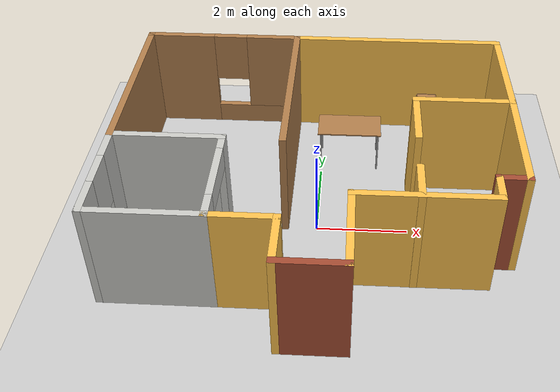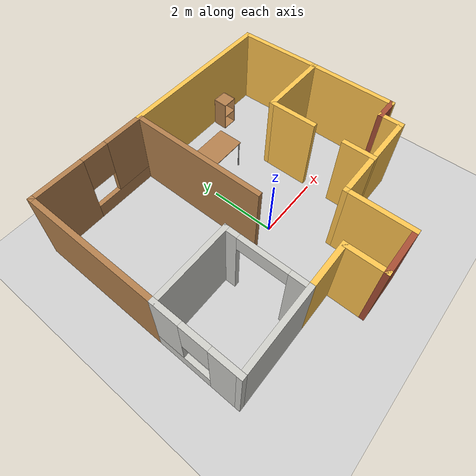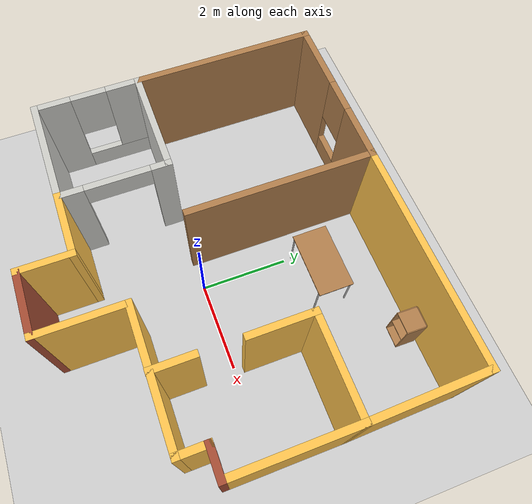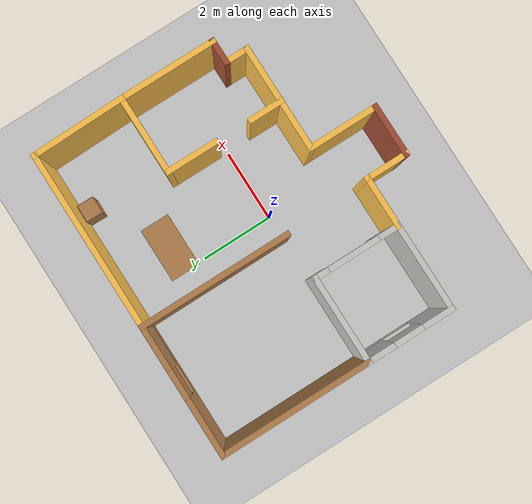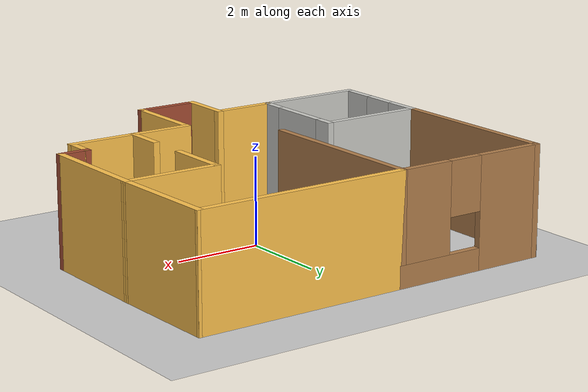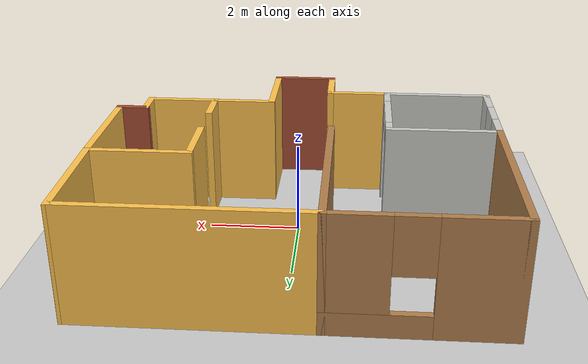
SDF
<sdf version="1.6">
 <world name="default">
  <light name="sun" type="directional">
   <pose>0 0 10 0 -0 0</pose>
   <diffuse>0.8 0.8 0.8 1</diffuse>
   <specular>0.2 0.2 0.2 1</specular>
   <attenuation>
    <range>1000</range>
    <constant>0.9</constant>
    <linear>0.01</linear>
    <quadratic>0.001</quadratic>
   </attenuation>
   <direction>-0.5 0.1 -0.9</direction>
  </light>
  <model name="ground_plane">
   <static>1</static>
   <link name="link">
    <collision name="collision">
     <geometry><plane><normal>0 0 1</normal><size>100 100</size></plane></geometry>
     <surface><friction><ode><mu>100</mu><mu2>50</mu2></ode></friction></surface>
    </collision>
    <visual name="visual">
     <cast_shadows>0</cast_shadows>
     <geometry><plane><normal>0 0 1</normal><size>100 100</size></plane></geometry>
     <material>
      <script><uri>file://media/materials/scripts/gazebo.material</uri><name>Gazebo/Grey</name></script>
     </material>
    </visual>
   </link>
  </model>
  <gravity>0 0 -9.8</gravity>
  <magnetic_field>6e-06 2.3e-05 -4.2e-05</magnetic_field>
  <atmosphere type="adiabatic"/>
  <physics name="default_physics" default="0" type="ode">
   <max_step_size>0.001</max_step_size>
   <real_time_factor>1</real_time_factor>
   <real_time_update_rate>1000</real_time_update_rate>
  </physics>
  <scene><ambient>0.4 0.4 0.4 1</ambient><background>0.7 0.7 0.7 1</background><shadows>1</shadows></scene>
  <audio><device>default</device></audio>
  <spherical_coordinates>
   <surface_model>EARTH_WGS84</surface_model>
   <latitude_deg>0</latitude_deg>
   <longitude_deg>0</longitude_deg>
   <elevation>0</elevation>
   <heading_deg>0</heading_deg>
  </spherical_coordinates>
  <model name="world">
   <pose>-0.057416 0.340258 0 0 -0 0</pose>
   <link name="Wall_0">
    <collision name="Wall_0_Collision">
     <geometry><box><size>2.25 0.15 2.5</size></box></geometry>
     <pose>0 0 1.25 0 -0 0</pose>
    </collision>
    <visual name="Wall_0_Visual">
     <pose>0 0 1.25 0 -0 0</pose>
     <geometry><box><size>2.25 0.15 2.5</size></box></geometry>
     <material>
      <script><uri>file://media/materials/scripts/gazebo.material</uri><name>Gazebo/Grey</name></script>
      <ambient>1 0.764706 0.305882 1</ambient>
     </material>
     <meta><layer>0</layer></meta>
    </visual>
    <pose>3.19926 1.27426 0 0 -0 0</pose>
   </link>
   <link name="Wall_1">
    <collision name="Wall_1_Collision">
     <geometry><box><size>2.75 0.15 2.5</size></box></geometry>
     <pose>0 0 1.25 0 -0 0</pose>
    </collision>
    <visual name="Wall_1_Visual">
     <pose>0 0 1.25 0 -0 0</pose>
     <geometry><box><size>2.75 0.15 2.5</size></box></geometry>
     <material>
      <script><uri>file://media/materials/scripts/gazebo.material</uri><name>Gazebo/Grey</name></script>
      <ambient>1 0.764706 0.305882 1</ambient>
     </material>
     <meta><layer>0</layer></meta>
    </visual>
    <pose>4.24926 -0.025743 0 0 -0 -1.5708</pose>
   </link>
   <link name="Wall_12">
    <pose>-4.25074 -1.50074 0 0 -0 1.5708</pose>
    <visual name="Wall_12_Visual_0">
     <pose>-0.813457 0 1.25 0 -0 0</pose>
     <geometry><box><size>0.873086 0.15 2.5</size></box></geometry>
     <material>
      <script><uri>file://media/materials/scripts/gazebo.material</uri><name>Gazebo/CeilingTiled</name></script>
      <ambient>1 1 1 1</ambient>
     </material>
     <meta><layer>0</layer></meta>
    </visual>
    <collision name="Wall_12_Collision_0">
     <geometry><box><size>0.873086 0.15 2.5</size></box></geometry>
     <pose>-0.813457 0 1.25 0 -0 0</pose>
    </collision>
    <visual name="Wall_12_Visual_1">
     <pose>0.436543 0 0.25 0 -0 0</pose>
     <geometry><box><size>1.62691 0.15 0.5</size></box></geometry>
     <material>
      <script><uri>file://media/materials/scripts/gazebo.material</uri><name>Gazebo/CeilingTiled</name></script>
      <ambient>1 1 1 1</ambient>
     </material>
     <meta><layer>0</layer></meta>
    </visual>
    <collision name="Wall_12_Collision_1">
     <geometry><box><size>1.62691 0.15 0.5</size></box></geometry>
     <pose>0.436543 0 0.25 0 -0 0</pose>
    </collision>
    <visual name="Wall_12_Visual_2">
     <pose>0.836543 0 1.5 0 -0 0</pose>
     <geometry><box><size>0.826914 0.15 2</size></box></geometry>
     <material>
      <script><uri>file://media/materials/scripts/gazebo.material</uri><name>Gazebo/CeilingTiled</name></script>
      <ambient>1 1 1 1</ambient>
     </material>
     <meta><layer>0</layer></meta>
    </visual>
    <collision name="Wall_12_Collision_2">
     <geometry><box><size>0.826914 0.15 2</size></box></geometry>
     <pose>0.836543 0 1.5 0 -0 0</pose>
    </collision>
    <visual name="Wall_12_Visual_3">
     <pose>0.023086 0 1.9 0 -0 0</pose>
     <geometry><box><size>0.8 0.15 1.2</size></box></geometry>
     <material>
      <script><uri>file://media/materials/scripts/gazebo.material</uri><name>Gazebo/CeilingTiled</name></script>
      <ambient>1 1 1 1</ambient>
     </material>
     <meta><layer>0</layer></meta>
    </visual>
    <collision name="Wall_12_Collision_3">
     <geometry><box><size>0.8 0.15 1.2</size></box></geometry>
     <pose>0.023086 0 1.9 0 -0 0</pose>
    </collision>
   </link>
   <link name="Wall_13">
    <collision name="Wall_13_Collision">
     <geometry><box><size>4.25 0.15 2.5</size></box></geometry>
     <pose>0 0 1.25 0 -0 0</pose>
    </collision>
    <visual name="Wall_13_Visual">
     <pose>0 0 1.25 0 -0 0</pose>
     <geometry><box><size>4.25 0.15 2.5</size></box></geometry>
     <material>
      <script><uri>file://media/materials/scripts/gazebo.material</uri><name>Gazebo/Wood</name></script>
      <ambient>1 1 1 1</ambient>
     </material>
     <meta><layer>0</layer></meta>
    </visual>
    <pose>-4.25074 1.72426 0 0 -0 1.5708</pose>
   </link>
   <link name="Wall_14">
    <pose>-2.45074 3.77426 0 0 -0 0</pose>
    <visual name="Wall_14_Visual_0">
     <pose>-1.05656 0 1.25 0 -0 0</pose>
     <geometry><box><size>1.63689 0.15 2.5</size></box></geometry>
     <material>
      <script><uri>file://media/materials/scripts/gazebo.material</uri><name>Gazebo/Wood</name></script>
      <ambient>1 1 1 1</ambient>
     </material>
     <meta><layer>0</layer></meta>
    </visual>
    <collision name="Wall_14_Collision_0">
     <geometry><box><size>1.63689 0.15 2.5</size></box></geometry>
     <pose>-1.05656 0 1.25 0 -0 0</pose>
    </collision>
    <visual name="Wall_14_Visual_1">
     <pose>0.818443 0 0.25 0 -0 0</pose>
     <geometry><box><size>2.11311 0.15 0.5</size></box></geometry>
     <material>
      <script><uri>file://media/materials/scripts/gazebo.material</uri><name>Gazebo/Wood</name></script>
      <ambient>1 1 1 1</ambient>
     </material>
     <meta><layer>0</layer></meta>
    </visual>
    <collision name="Wall_14_Collision_1">
     <geometry><box><size>2.11311 0.15 0.5</size></box></geometry>
     <pose>0.818443 0 0.25 0 -0 0</pose>
    </collision>
    <visual name="Wall_14_Visual_2">
     <pose>1.21844 0 1.5 0 -0 0</pose>
     <geometry><box><size>1.31311 0.15 2</size></box></geometry>
     <material>
      <script><uri>file://media/materials/scripts/gazebo.material</uri><name>Gazebo/Wood</name></script>
      <ambient>1 1 1 1</ambient>
     </material>
     <meta><layer>0</layer></meta>
    </visual>
    <collision name="Wall_14_Collision_2">
     <geometry><box><size>1.31311 0.15 2</size></box></geometry>
     <pose>1.21844 0 1.5 0 -0 0</pose>
    </collision>
    <visual name="Wall_14_Visual_3">
     <pose>0.161886 0 1.9 0 -0 0</pose>
     <geometry><box><size>0.8 0.15 1.2</size></box></geometry>
     <material>
      <script><uri>file://media/materials/scripts/gazebo.material</uri><name>Gazebo/Wood</name></script>
      <ambient>1 1 1 1</ambient>
     </material>
     <meta><layer>0</layer></meta>
    </visual>
    <collision name="Wall_14_Collision_3">
     <geometry><box><size>0.8 0.15 1.2</size></box></geometry>
     <pose>0.161886 0 1.9 0 -0 0</pose>
    </collision>
   </link>
   <link name="Wall_17">
    <collision name="Wall_17_Collision">
     <geometry><box><size>2.5 0.15 2.5</size></box></geometry>
     <pose>0 0 1.25 0 -0 0</pose>
    </collision>
    <visual name="Wall_17_Visual">
     <pose>0 0 1.25 0 -0 0</pose>
     <geometry><box><size>2.5 0.15 2.5</size></box></geometry>
     <material>
      <script><uri>file://media/materials/scripts/gazebo.material</uri><name>Gazebo/CeilingTiled</name></script>
      <ambient>1 1 1 1</ambient>
     </material>
     <meta><layer>0</layer></meta>
    </visual>
    <pose>-3.07574 -0.325742 0 0 -0 0</pose>
   </link>
   <link name="Wall_19">
    <pose>-1.90074 -1.50074 0 0 -0 -1.5708</pose>
    <visual name="Wall_19_Visual_0">
     <pose>-1.01895 0 1.25 0 -0 0</pose>
     <geometry><box><size>0.462093 0.15 2.5</size></box></geometry>
     <material>
      <script><uri>file://media/materials/scripts/gazebo.material</uri><name>Gazebo/CeilingTiled</name></script>
      <ambient>1 1 1 1</ambient>
     </material>
     <meta><layer>0</layer></meta>
    </visual>
    <collision name="Wall_19_Collision_0">
     <geometry><box><size>0.462093 0.15 2.5</size></box></geometry>
     <pose>-1.01895 0 1.25 0 -0 0</pose>
    </collision>
    <visual name="Wall_19_Visual_1">
     <pose>0.943398 0 1.25 0 -0 0</pose>
     <geometry><box><size>0.613205 0.15 2.5</size></box></geometry>
     <material>
      <script><uri>file://media/materials/scripts/gazebo.material</uri><name>Gazebo/CeilingTiled</name></script>
      <ambient>1 1 1 1</ambient>
     </material>
     <meta><layer>0</layer></meta>
    </visual>
    <collision name="Wall_19_Collision_1">
     <geometry><box><size>0.613205 0.15 2.5</size></box></geometry>
     <pose>0.943398 0 1.25 0 -0 0</pose>
    </collision>
    <visual name="Wall_19_Visual_2">
     <pose>-0.075556 0 2.25 0 -0 0</pose>
     <geometry><box><size>1.4247 0.15 0.5</size></box></geometry>
     <material>
      <script><uri>file://media/materials/scripts/gazebo.material</uri><name>Gazebo/CeilingTiled</name></script>
      <ambient>1 1 1 1</ambient>
     </material>
     <meta><layer>0</layer></meta>
    </visual>
    <collision name="Wall_19_Collision_2">
     <geometry><box><size>1.4247 0.15 0.5</size></box></geometry>
     <pose>-0.075556 0 2.25 0 -0 0</pose>
    </collision>
   </link>
   <link name="Wall_2">
    <collision name="Wall_2_Collision">
     <geometry><box><size>0.75 0.15 2.5</size></box></geometry>
     <pose>0 0 1.25 0 -0 0</pose>
    </collision>
    <visual name="Wall_2_Visual">
     <pose>0 0 1.25 0 -0 0</pose>
     <geometry><box><size>0.75 0.15 2.5</size></box></geometry>
     <material>
      <script><uri>file://media/materials/scripts/gazebo.material</uri><name>Gazebo/Bricks</name></script>
      <ambient>1 1 1 1</ambient>
     </material>
     <meta><layer>0</layer></meta>
    </visual>
    <pose>3.94926 -1.32574 0 0 -0 3.14159</pose>
   </link>
   <link name="Wall_21">
    <collision name="Wall_21_Collision">
     <geometry><box><size>5 0.15 2.5</size></box></geometry>
     <pose>0 0 1.25 0 -0 0</pose>
    </collision>
    <visual name="Wall_21_Visual">
     <pose>0 0 1.25 0 -0 0</pose>
     <geometry><box><size>5 0.15 2.5</size></box></geometry>
     <material>
      <script><uri>file://media/materials/scripts/gazebo.material</uri><name>Gazebo/Grey</name></script>
      <ambient>1 0.764706 0.305882 1</ambient>
     </material>
     <meta><layer>0</layer></meta>
    </visual>
    <pose>1.77426 3.77426 0 0 -0 0</pose>
   </link>
   <link name="Wall_22">
    <collision name="Wall_22_Collision">
     <geometry><box><size>2.6505 0.15 2.5</size></box></geometry>
     <pose>0 0 1.25 0 -0 0</pose>
    </collision>
    <visual name="Wall_22_Visual">
     <pose>0 0 1.25 0 -0 0</pose>
     <geometry><box><size>2.6505 0.15 2.5</size></box></geometry>
     <material>
      <script><uri>file://media/materials/scripts/gazebo.material</uri><name>Gazebo/Grey</name></script>
      <ambient>1 0.764706 0.305882 1</ambient>
     </material>
     <meta><layer>0</layer></meta>
    </visual>
    <pose>4.22426 2.52426 0 0 -0 -1.5508</pose>
   </link>
   <link name="Wall_24">
    <collision name="Wall_24_Collision">
     <geometry><box><size>4.25 0.15 2.5</size></box></geometry>
     <pose>0 0 1.25 0 -0 0</pose>
    </collision>
    <visual name="Wall_24_Visual">
     <pose>0 0 1.25 0 -0 0</pose>
     <geometry><box><size>4.25 0.15 2.5</size></box></geometry>
     <material>
      <script><uri>file://media/materials/scripts/gazebo.material</uri><name>Gazebo/Wood</name></script>
      <ambient>1 1 1 1</ambient>
     </material>
     <meta><layer>0</layer></meta>
    </visual>
    <pose>-0.650742 1.72426 0 0 -0 -1.5708</pose>
   </link>
   <link name="Wall_27">
    <collision name="Wall_27_Collision">
     <geometry><box><size>1.5 0.15 2.5</size></box></geometry>
     <pose>0 0 1.25 0 -0 0</pose>
    </collision>
    <visual name="Wall_27_Visual">
     <pose>0 0 1.25 0 -0 0</pose>
     <geometry><box><size>1.5 0.15 2.5</size></box></geometry>
     <material>
      <script><uri>file://media/materials/scripts/gazebo.material</uri><name>Gazebo/Grey</name></script>
      <ambient>1 0.764706 0.305882 1</ambient>
     </material>
     <meta><layer>0</layer></meta>
    </visual>
    <pose>2.14926 0.599257 0 0 -0 -1.5708</pose>
   </link>
   <link name="Wall_29">
    <collision name="Wall_29_Collision">
     <geometry><box><size>1 0.15 2.5</size></box></geometry>
     <pose>0 0 1.25 0 -0 0</pose>
    </collision>
    <visual name="Wall_29_Visual">
     <pose>0 0 1.25 0 -0 0</pose>
     <geometry><box><size>1 0.15 2.5</size></box></geometry>
     <material>
      <script><uri>file://media/materials/scripts/gazebo.material</uri><name>Gazebo/Grey</name></script>
      <ambient>1 0.764706 0.305882 1</ambient>
     </material>
     <meta><layer>0</layer></meta>
    </visual>
    <pose>2.13613 -1.5074 0 0 -0 1.5708</pose>
   </link>
   <link name="Wall_3">
    <collision name="Wall_3_Collision">
     <geometry><box><size>0.75 0.15 2.5</size></box></geometry>
     <pose>0 0 1.25 0 -0 0</pose>
    </collision>
    <visual name="Wall_3_Visual">
     <pose>0 0 1.25 0 -0 0</pose>
     <geometry><box><size>0.75 0.15 2.5</size></box></geometry>
     <material>
      <script><uri>file://media/materials/scripts/gazebo.material</uri><name>Gazebo/Grey</name></script>
      <ambient>1 0.764706 0.305882 1</ambient>
     </material>
     <meta><layer>0</layer></meta>
    </visual>
    <pose>3.64926 -1.62574 0 0 -0 -1.5708</pose>
   </link>
   <link name="Wall_4">
    <collision name="Wall_4_Collision">
     <geometry><box><size>3 0.15 2.5</size></box></geometry>
     <pose>0 0 1.25 0 -0 0</pose>
    </collision>
    <visual name="Wall_4_Visual">
     <pose>0 0 1.25 0 -0 0</pose>
     <geometry><box><size>3 0.15 2.5</size></box></geometry>
     <material>
      <script><uri>file://media/materials/scripts/gazebo.material</uri><name>Gazebo/Grey</name></script>
      <ambient>1 0.764706 0.305882 1</ambient>
     </material>
     <meta><layer>0</layer></meta>
    </visual>
    <pose>2.22426 -1.92574 0 0 -0 3.14159</pose>
   </link>
   <link name="Wall_5">
    <collision name="Wall_5_Collision">
     <geometry><box><size>2 0.15 2.5</size></box></geometry>
     <pose>0 0 1.25 0 -0 0</pose>
    </collision>
    <visual name="Wall_5_Visual">
     <pose>0 0 1.25 0 -0 0</pose>
     <geometry><box><size>2 0.15 2.5</size></box></geometry>
     <material>
      <script><uri>file://media/materials/scripts/gazebo.material</uri><name>Gazebo/Grey</name></script>
      <ambient>1 0.764706 0.305882 1</ambient>
     </material>
     <meta><layer>0</layer></meta>
    </visual>
    <pose>0.799258 -2.85074 0 0 -0 -1.5708</pose>
   </link>
   <link name="Wall_6">
    <collision name="Wall_6_Collision">
     <geometry><box><size>1.5 0.15 2.5</size></box></geometry>
     <pose>0 0 1.25 0 -0 0</pose>
    </collision>
    <visual name="Wall_6_Visual">
     <pose>0 0 1.25 0 -0 0</pose>
     <geometry><box><size>1.5 0.15 2.5</size></box></geometry>
     <material>
      <script><uri>file://media/materials/scripts/gazebo.material</uri><name>Gazebo/Bricks</name></script>
      <ambient>1 1 1 1</ambient>
     </material>
     <meta><layer>0</layer></meta>
    </visual>
    <pose>0.124258 -3.77574 0 0 -0 3.14159</pose>
   </link>
   <link name="Wall_7">
    <collision name="Wall_7_Collision">
     <geometry><box><size>1.25 0.15 2.5</size></box></geometry>
     <pose>0 0 1.25 0 -0 0</pose>
    </collision>
    <visual name="Wall_7_Visual">
     <pose>0 0 1.25 0 -0 0</pose>
     <geometry><box><size>1.25 0.15 2.5</size></box></geometry>
     <material>
      <script><uri>file://media/materials/scripts/gazebo.material</uri><name>Gazebo/Grey</name></script>
      <ambient>1 0.764706 0.305882 1</ambient>
     </material>
     <meta><layer>0</layer></meta>
    </visual>
    <pose>-0.550742 -3.22574 0 0 -0 1.5708</pose>
   </link>
   <link name="Wall_8">
    <collision name="Wall_8_Collision">
     <geometry><box><size>1.5 0.15 2.5</size></box></geometry>
     <pose>0 0 1.25 0 -0 0</pose>
    </collision>
    <visual name="Wall_8_Visual">
     <pose>0 0 1.25 0 -0 0</pose>
     <geometry><box><size>1.5 0.15 2.5</size></box></geometry>
     <material>
      <script><uri>file://media/materials/scripts/gazebo.material</uri><name>Gazebo/Grey</name></script>
      <ambient>1 0.764706 0.305882 1</ambient>
     </material>
     <meta><layer>0</layer></meta>
    </visual>
    <pose>-1.22574 -2.67574 0 0 -0 3.14159</pose>
   </link>
   <link name="Wall_9">
    <collision name="Wall_9_Collision">
     <geometry><box><size>2.5 0.15 2.5</size></box></geometry>
     <pose>0 0 1.25 0 -0 0</pose>
    </collision>
    <visual name="Wall_9_Visual">
     <pose>0 0 1.25 0 -0 0</pose>
     <geometry><box><size>2.5 0.15 2.5</size></box></geometry>
     <material>
      <script><uri>file://media/materials/scripts/gazebo.material</uri><name>Gazebo/CeilingTiled</name></script>
      <ambient>1 1 1 1</ambient>
     </material>
     <meta><layer>0</layer></meta>
    </visual>
    <pose>-3.07574 -2.67574 0 0 -0 3.14159</pose>
   </link>
   <static>1</static>
  </model>
  <model name="cabinet">
   <static>1</static>
   <link name="cabinet_bottom_plate">
    <inertial>
     <pose>0 0 -1 0 -0 0</pose>
     <inertia><ixx>2.05</ixx><ixy>0</ixy><ixz>0</ixz><iyy>2.05</iyy><iyz>0</iyz><izz>2.05</izz></inertia>
     <mass>25</mass>
    </inertial>
    <collision name="cabinet_bottom_plate_geom">
     <pose>0 0 0.01 0 -0 0</pose>
     <geometry><box><size>0.45 0.45 0.02</size></box></geometry>
    </collision>
    <visual name="cabinet_bottom_plate_geom_visual">
     <pose>0 0 0.01 0 -0 0</pose>
     <geometry><box><size>0.45 0.45 0.02</size></box></geometry>
     <material>
      <script><uri>file://media/materials/scripts/gazebo.material</uri><name>Gazebo/Wood</name></script>
     </material>
    </visual>
    <collision name="cabinet_bottom_plate_geom_cabinet_back_plate">
     <pose>0.235 0 0.51 0 -0 0</pose>
     <geometry><box><size>0.02 0.45 1.02</size></box></geometry>
    </collision>
    <visual name="cabinet_bottom_plate_geom_cabinet_back_plate_visual">
     <pose>0.235 0 0.51 0 -0 0</pose>
     <geometry><box><size>0.02 0.45 1.02</size></box></geometry>
     <material>
      <script><uri>file://media/materials/scripts/gazebo.material</uri><name>Gazebo/Wood</name></script>
     </material>
    </visual>
    <collision name="cabinet_bottom_plate_geom_cabinet_left_plate">
     <pose>0 0.235 0.51 0 -0 0</pose>
     <geometry><box><size>0.45 0.02 1.02</size></box></geometry>
    </collision>
    <visual name="cabinet_bottom_plate_geom_cabinet_left_plate_visual">
     <pose>0 0.235 0.51 0 -0 0</pose>
     <geometry><box><size>0.45 0.02 1.02</size></box></geometry>
     <material>
      <script><uri>file://media/materials/scripts/gazebo.material</uri><name>Gazebo/Wood</name></script>
     </material>
    </visual>
    <collision name="cabinet_bottom_plate_geom_cabinet_middle_plate">
     <pose>0 0 0.51 0 -0 0</pose>
     <geometry><box><size>0.45 0.45 0.02</size></box></geometry>
    </collision>
    <visual name="cabinet_bottom_plate_geom_cabinet_middle_plate_visual">
     <pose>0 0 0.51 0 -0 0</pose>
     <geometry><box><size>0.45 0.45 0.02</size></box></geometry>
     <material>
      <script><uri>file://media/materials/scripts/gazebo.material</uri><name>Gazebo/Wood</name></script>
     </material>
    </visual>
    <collision name="cabinet_bottom_plate_geom_cabinet_right_plate">
     <pose>0 -0.235 0.51 0 -0 0</pose>
     <geometry><box><size>0.45 0.02 1.02</size></box></geometry>
    </collision>
    <visual name="cabinet_bottom_plate_geom_cabinet_right_plate_visual">
     <pose>0 -0.235 0.51 0 -0 0</pose>
     <geometry><box><size>0.45 0.02 1.02</size></box></geometry>
     <material>
      <script><uri>file://media/materials/scripts/gazebo.material</uri><name>Gazebo/Wood</name></script>
     </material>
    </visual>
    <collision name="cabinet_bottom_plate_geom_cabinet_top_plate">
     <pose>0 0 1.01 0 -0 0</pose>
     <geometry><box><size>0.45 0.45 0.02</size></box></geometry>
    </collision>
    <visual name="cabinet_bottom_plate_geom_cabinet_top_plate_visual">
     <pose>0 0 1.01 0 -0 0</pose>
     <geometry><box><size>0.45 0.45 0.02</size></box></geometry>
     <material>
      <script><uri>file://media/materials/scripts/gazebo.material</uri><name>Gazebo/Wood</name></script>
     </material>
    </visual>
   </link>
   <pose>2.56307 3.78098 0 0 -0 1.55364</pose>
  </model>
  <model name="table">
   <static>1</static>
   <link name="link">
    <collision name="surface">
     <pose>0 0 1 0 -0 0</pose>
     <geometry><box><size>1.5 0.8 0.03</size></box></geometry>
     <surface><friction><ode><mu>0.6</mu><mu2>0.6</mu2></ode></friction></surface>
    </collision>
    <visual name="visual1">
     <pose>0 0 1 0 -0 0</pose>
     <geometry><box><size>1.5 0.8 0.03</size></box></geometry>
     <material>
      <script><uri>file://media/materials/scripts/gazebo.material</uri><name>Gazebo/Wood</name></script>
     </material>
    </visual>
    <collision name="front_left_leg">
     <pose>0.68 0.38 0.5 0 -0 0</pose>
     <geometry><cylinder><radius>0.02</radius><length>1</length></cylinder></geometry>
    </collision>
    <visual name="front_left_leg">
     <pose>0.68 0.38 0.5 0 -0 0</pose>
     <geometry><cylinder><radius>0.02</radius><length>1</length></cylinder></geometry>
     <material>
      <script><uri>file://media/materials/scripts/gazebo.material</uri><name>Gazebo/Grey</name></script>
     </material>
    </visual>
    <collision name="front_right_leg">
     <pose>0.68 -0.38 0.5 0 -0 0</pose>
     <geometry><cylinder><radius>0.02</radius><length>1</length></cylinder></geometry>
    </collision>
    <visual name="front_right_leg">
     <pose>0.68 -0.38 0.5 0 -0 0</pose>
     <geometry><cylinder><radius>0.02</radius><length>1</length></cylinder></geometry>
     <material>
      <script><uri>file://media/materials/scripts/gazebo.material</uri><name>Gazebo/Grey</name></script>
     </material>
    </visual>
    <collision name="back_right_leg">
     <pose>-0.68 -0.38 0.5 0 -0 0</pose>
     <geometry><cylinder><radius>0.02</radius><length>1</length></cylinder></geometry>
    </collision>
    <visual name="back_right_leg">
     <pose>-0.68 -0.38 0.5 0 -0 0</pose>
     <geometry><cylinder><radius>0.02</radius><length>1</length></cylinder></geometry>
     <material>
      <script><uri>file://media/materials/scripts/gazebo.material</uri><name>Gazebo/Grey</name></script>
     </material>
    </visual>
    <collision name="back_left_leg">
     <pose>-0.68 0.38 0.5 0 -0 0</pose>
     <geometry><cylinder><radius>0.02</radius><length>1</length></cylinder></geometry>
    </collision>
    <visual name="back_left_leg">
     <pose>-0.68 0.38 0.5 0 -0 0</pose>
     <geometry><cylinder><radius>0.02</radius><length>1</length></cylinder></geometry>
     <material>
      <script><uri>file://media/materials/scripts/gazebo.material</uri><name>Gazebo/Grey</name></script>
     </material>
    </visual>
   </link>
   <pose>0.652163 2.58493 0 0 -0 0</pose>
  </model>
  <plugin filename="libcollision_map_creator.so" name="collision_map_creator"/>
 </world>
</sdf>
